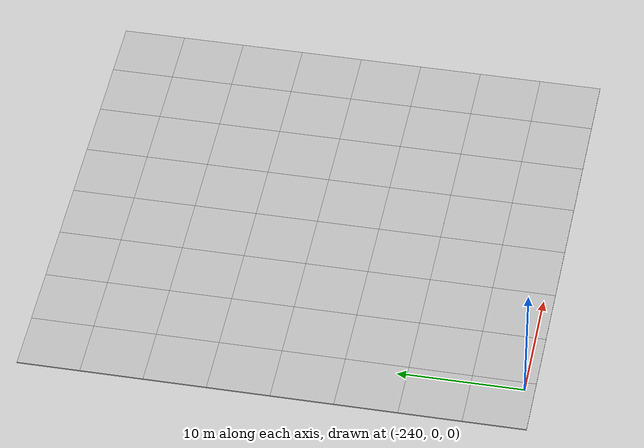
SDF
<sdf version="1.7">
 <world name="default">
  <model name="mud_plane_40x40_27">
   <model name="mud_plane_20x20">
    <model name="mud_plane">
     <static>1</static>
     <link name="link">
      <collision name="collision"><geometry><box><size>10 10 0.1</size></box></geometry></collision>
      <visual name="visual_1">
       <pose>-2.5 2.5 -0.05 0 -0 0</pose>
       <cast_shadows>0</cast_shadows>
       <geometry><box><size>5 5 0.1</size></box></geometry>
       <material>
        <script>
         <uri>model://mud_plane/materials/scripts</uri>
         <uri>model://mud_plane/materials/textures</uri>
         <name>vrc/mud</name>
        </script>
       </material>
      </visual>
      <visual name="visual_2">
       <pose>2.5 2.5 -0.05 0 -0 0</pose>
       <cast_shadows>0</cast_shadows>
       <geometry><box><size>5 5 0.1</size></box></geometry>
       <material>
        <script>
         <uri>model://mud_plane/materials/scripts</uri>
         <uri>model://mud_plane/materials/textures</uri>
         <name>vrc/mud</name>
        </script>
       </material>
      </visual>
      <visual name="visual_3">
       <pose>2.5 -2.5 -0.05 0 -0 0</pose>
       <cast_shadows>0</cast_shadows>
       <geometry><box><size>5 5 0.1</size></box></geometry>
       <material>
        <script>
         <uri>model://mud_plane/materials/scripts</uri>
         <uri>model://mud_plane/materials/textures</uri>
         <name>vrc/mud</name>
        </script>
       </material>
      </visual>
      <visual name="visual_4">
       <pose>-2.5 -2.5 -0.05 0 -0 0</pose>
       <cast_shadows>0</cast_shadows>
       <geometry><box><size>5 5 0.1</size></box></geometry>
       <material>
        <script>
         <uri>model://mud_plane/materials/scripts</uri>
         <uri>model://mud_plane/materials/textures</uri>
         <name>vrc/mud</name>
        </script>
       </material>
      </visual>
     </link>
     <pose>-4.99986 -4.99991 0 0 -0 0</pose>
    </model>
    <model name="mud_plane_0">
     <static>1</static>
     <link name="link">
      <collision name="collision"><geometry><box><size>10 10 0.1</size></box></geometry></collision>
      <visual name="visual_1">
       <pose>-2.5 2.5 -0.05 0 -0 0</pose>
       <cast_shadows>0</cast_shadows>
       <geometry><box><size>5 5 0.1</size></box></geometry>
       <material>
        <script>
         <uri>model://mud_plane/materials/scripts</uri>
         <uri>model://mud_plane/materials/textures</uri>
         <name>vrc/mud</name>
        </script>
       </material>
      </visual>
      <visual name="visual_2">
       <pose>2.5 2.5 -0.05 0 -0 0</pose>
       <cast_shadows>0</cast_shadows>
       <geometry><box><size>5 5 0.1</size></box></geometry>
       <material>
        <script>
         <uri>model://mud_plane/materials/scripts</uri>
         <uri>model://mud_plane/materials/textures</uri>
         <name>vrc/mud</name>
        </script>
       </material>
      </visual>
      <visual name="visual_3">
       <pose>2.5 -2.5 -0.05 0 -0 0</pose>
       <cast_shadows>0</cast_shadows>
       <geometry><box><size>5 5 0.1</size></box></geometry>
       <material>
        <script>
         <uri>model://mud_plane/materials/scripts</uri>
         <uri>model://mud_plane/materials/textures</uri>
         <name>vrc/mud</name>
        </script>
       </material>
      </visual>
      <visual name="visual_4">
       <pose>-2.5 -2.5 -0.05 0 -0 0</pose>
       <cast_shadows>0</cast_shadows>
       <geometry><box><size>5 5 0.1</size></box></geometry>
       <material>
        <script>
         <uri>model://mud_plane/materials/scripts</uri>
         <uri>model://mud_plane/materials/textures</uri>
         <name>vrc/mud</name>
        </script>
       </material>
      </visual>
     </link>
     <pose>-4.99946 4.99954 0 0 -0 0</pose>
    </model>
    <model name="mud_plane_1">
     <static>1</static>
     <link name="link">
      <collision name="collision"><geometry><box><size>10 10 0.1</size></box></geometry></collision>
      <visual name="visual_1">
       <pose>-2.5 2.5 -0.05 0 -0 0</pose>
       <cast_shadows>0</cast_shadows>
       <geometry><box><size>5 5 0.1</size></box></geometry>
       <material>
        <script>
         <uri>model://mud_plane/materials/scripts</uri>
         <uri>model://mud_plane/materials/textures</uri>
         <name>vrc/mud</name>
        </script>
       </material>
      </visual>
      <visual name="visual_2">
       <pose>2.5 2.5 -0.05 0 -0 0</pose>
       <cast_shadows>0</cast_shadows>
       <geometry><box><size>5 5 0.1</size></box></geometry>
       <material>
        <script>
         <uri>model://mud_plane/materials/scripts</uri>
         <uri>model://mud_plane/materials/textures</uri>
         <name>vrc/mud</name>
        </script>
       </material>
      </visual>
      <visual name="visual_3">
       <pose>2.5 -2.5 -0.05 0 -0 0</pose>
       <cast_shadows>0</cast_shadows>
       <geometry><box><size>5 5 0.1</size></box></geometry>
       <material>
        <script>
         <uri>model://mud_plane/materials/scripts</uri>
         <uri>model://mud_plane/materials/textures</uri>
         <name>vrc/mud</name>
        </script>
       </material>
      </visual>
      <visual name="visual_4">
       <pose>-2.5 -2.5 -0.05 0 -0 0</pose>
       <cast_shadows>0</cast_shadows>
       <geometry><box><size>5 5 0.1</size></box></geometry>
       <material>
        <script>
         <uri>model://mud_plane/materials/scripts</uri>
         <uri>model://mud_plane/materials/textures</uri>
         <name>vrc/mud</name>
        </script>
       </material>
      </visual>
     </link>
     <pose>4.99964 -4.99949 0 0 -0 0</pose>
    </model>
    <model name="mud_plane_2">
     <static>1</static>
     <link name="link">
      <collision name="collision"><geometry><box><size>10 10 0.1</size></box></geometry></collision>
      <visual name="visual_1">
       <pose>-2.5 2.5 -0.05 0 -0 0</pose>
       <cast_shadows>0</cast_shadows>
       <geometry><box><size>5 5 0.1</size></box></geometry>
       <material>
        <script>
         <uri>model://mud_plane/materials/scripts</uri>
         <uri>model://mud_plane/materials/textures</uri>
         <name>vrc/mud</name>
        </script>
       </material>
      </visual>
      <visual name="visual_2">
       <pose>2.5 2.5 -0.05 0 -0 0</pose>
       <cast_shadows>0</cast_shadows>
       <geometry><box><size>5 5 0.1</size></box></geometry>
       <material>
        <script>
         <uri>model://mud_plane/materials/scripts</uri>
         <uri>model://mud_plane/materials/textures</uri>
         <name>vrc/mud</name>
        </script>
       </material>
      </visual>
      <visual name="visual_3">
       <pose>2.5 -2.5 -0.05 0 -0 0</pose>
       <cast_shadows>0</cast_shadows>
       <geometry><box><size>5 5 0.1</size></box></geometry>
       <material>
        <script>
         <uri>model://mud_plane/materials/scripts</uri>
         <uri>model://mud_plane/materials/textures</uri>
         <name>vrc/mud</name>
        </script>
       </material>
      </visual>
      <visual name="visual_4">
       <pose>-2.5 -2.5 -0.05 0 -0 0</pose>
       <cast_shadows>0</cast_shadows>
       <geometry><box><size>5 5 0.1</size></box></geometry>
       <material>
        <script>
         <uri>model://mud_plane/materials/scripts</uri>
         <uri>model://mud_plane/materials/textures</uri>
         <name>vrc/mud</name>
        </script>
       </material>
      </visual>
     </link>
     <pose>4.99967 4.99986 0 0 -0 0</pose>
    </model>
    <static>0</static>
    <pose>-9.99895 9.99843 0 0 -0 0</pose>
   </model>
   <model name="mud_plane_20x20_0">
    <model name="mud_plane">
     <static>1</static>
     <link name="link">
      <collision name="collision"><geometry><box><size>10 10 0.1</size></box></geometry></collision>
      <visual name="visual_1">
       <pose>-2.5 2.5 -0.05 0 -0 0</pose>
       <cast_shadows>0</cast_shadows>
       <geometry><box><size>5 5 0.1</size></box></geometry>
       <material>
        <script>
         <uri>model://mud_plane/materials/scripts</uri>
         <uri>model://mud_plane/materials/textures</uri>
         <name>vrc/mud</name>
        </script>
       </material>
      </visual>
      <visual name="visual_2">
       <pose>2.5 2.5 -0.05 0 -0 0</pose>
       <cast_shadows>0</cast_shadows>
       <geometry><box><size>5 5 0.1</size></box></geometry>
       <material>
        <script>
         <uri>model://mud_plane/materials/scripts</uri>
         <uri>model://mud_plane/materials/textures</uri>
         <name>vrc/mud</name>
        </script>
       </material>
      </visual>
      <visual name="visual_3">
       <pose>2.5 -2.5 -0.05 0 -0 0</pose>
       <cast_shadows>0</cast_shadows>
       <geometry><box><size>5 5 0.1</size></box></geometry>
       <material>
        <script>
         <uri>model://mud_plane/materials/scripts</uri>
         <uri>model://mud_plane/materials/textures</uri>
         <name>vrc/mud</name>
        </script>
       </material>
      </visual>
      <visual name="visual_4">
       <pose>-2.5 -2.5 -0.05 0 -0 0</pose>
       <cast_shadows>0</cast_shadows>
       <geometry><box><size>5 5 0.1</size></box></geometry>
       <material>
        <script>
         <uri>model://mud_plane/materials/scripts</uri>
         <uri>model://mud_plane/materials/textures</uri>
         <name>vrc/mud</name>
        </script>
       </material>
      </visual>
     </link>
     <pose>-4.99986 -4.99991 0 0 -0 0</pose>
    </model>
    <model name="mud_plane_0">
     <static>1</static>
     <link name="link">
      <collision name="collision"><geometry><box><size>10 10 0.1</size></box></geometry></collision>
      <visual name="visual_1">
       <pose>-2.5 2.5 -0.05 0 -0 0</pose>
       <cast_shadows>0</cast_shadows>
       <geometry><box><size>5 5 0.1</size></box></geometry>
       <material>
        <script>
         <uri>model://mud_plane/materials/scripts</uri>
         <uri>model://mud_plane/materials/textures</uri>
         <name>vrc/mud</name>
        </script>
       </material>
      </visual>
      <visual name="visual_2">
       <pose>2.5 2.5 -0.05 0 -0 0</pose>
       <cast_shadows>0</cast_shadows>
       <geometry><box><size>5 5 0.1</size></box></geometry>
       <material>
        <script>
         <uri>model://mud_plane/materials/scripts</uri>
         <uri>model://mud_plane/materials/textures</uri>
         <name>vrc/mud</name>
        </script>
       </material>
      </visual>
      <visual name="visual_3">
       <pose>2.5 -2.5 -0.05 0 -0 0</pose>
       <cast_shadows>0</cast_shadows>
       <geometry><box><size>5 5 0.1</size></box></geometry>
       <material>
        <script>
         <uri>model://mud_plane/materials/scripts</uri>
         <uri>model://mud_plane/materials/textures</uri>
         <name>vrc/mud</name>
        </script>
       </material>
      </visual>
      <visual name="visual_4">
       <pose>-2.5 -2.5 -0.05 0 -0 0</pose>
       <cast_shadows>0</cast_shadows>
       <geometry><box><size>5 5 0.1</size></box></geometry>
       <material>
        <script>
         <uri>model://mud_plane/materials/scripts</uri>
         <uri>model://mud_plane/materials/textures</uri>
         <name>vrc/mud</name>
        </script>
       </material>
      </visual>
     </link>
     <pose>-4.99946 4.99954 0 0 -0 0</pose>
    </model>
    <model name="mud_plane_1">
     <static>1</static>
     <link name="link">
      <collision name="collision"><geometry><box><size>10 10 0.1</size></box></geometry></collision>
      <visual name="visual_1">
       <pose>-2.5 2.5 -0.05 0 -0 0</pose>
       <cast_shadows>0</cast_shadows>
       <geometry><box><size>5 5 0.1</size></box></geometry>
       <material>
        <script>
         <uri>model://mud_plane/materials/scripts</uri>
         <uri>model://mud_plane/materials/textures</uri>
         <name>vrc/mud</name>
        </script>
       </material>
      </visual>
      <visual name="visual_2">
       <pose>2.5 2.5 -0.05 0 -0 0</pose>
       <cast_shadows>0</cast_shadows>
       <geometry><box><size>5 5 0.1</size></box></geometry>
       <material>
        <script>
         <uri>model://mud_plane/materials/scripts</uri>
         <uri>model://mud_plane/materials/textures</uri>
         <name>vrc/mud</name>
        </script>
       </material>
      </visual>
      <visual name="visual_3">
       <pose>2.5 -2.5 -0.05 0 -0 0</pose>
       <cast_shadows>0</cast_shadows>
       <geometry><box><size>5 5 0.1</size></box></geometry>
       <material>
        <script>
         <uri>model://mud_plane/materials/scripts</uri>
         <uri>model://mud_plane/materials/textures</uri>
         <name>vrc/mud</name>
        </script>
       </material>
      </visual>
      <visual name="visual_4">
       <pose>-2.5 -2.5 -0.05 0 -0 0</pose>
       <cast_shadows>0</cast_shadows>
       <geometry><box><size>5 5 0.1</size></box></geometry>
       <material>
        <script>
         <uri>model://mud_plane/materials/scripts</uri>
         <uri>model://mud_plane/materials/textures</uri>
         <name>vrc/mud</name>
        </script>
       </material>
      </visual>
     </link>
     <pose>4.99964 -4.99949 0 0 -0 0</pose>
    </model>
    <model name="mud_plane_2">
     <static>1</static>
     <link name="link">
      <collision name="collision"><geometry><box><size>10 10 0.1</size></box></geometry></collision>
      <visual name="visual_1">
       <pose>-2.5 2.5 -0.05 0 -0 0</pose>
       <cast_shadows>0</cast_shadows>
       <geometry><box><size>5 5 0.1</size></box></geometry>
       <material>
        <script>
         <uri>model://mud_plane/materials/scripts</uri>
         <uri>model://mud_plane/materials/textures</uri>
         <name>vrc/mud</name>
        </script>
       </material>
      </visual>
      <visual name="visual_2">
       <pose>2.5 2.5 -0.05 0 -0 0</pose>
       <cast_shadows>0</cast_shadows>
       <geometry><box><size>5 5 0.1</size></box></geometry>
       <material>
        <script>
         <uri>model://mud_plane/materials/scripts</uri>
         <uri>model://mud_plane/materials/textures</uri>
         <name>vrc/mud</name>
        </script>
       </material>
      </visual>
      <visual name="visual_3">
       <pose>2.5 -2.5 -0.05 0 -0 0</pose>
       <cast_shadows>0</cast_shadows>
       <geometry><box><size>5 5 0.1</size></box></geometry>
       <material>
        <script>
         <uri>model://mud_plane/materials/scripts</uri>
         <uri>model://mud_plane/materials/textures</uri>
         <name>vrc/mud</name>
        </script>
       </material>
      </visual>
      <visual name="visual_4">
       <pose>-2.5 -2.5 -0.05 0 -0 0</pose>
       <cast_shadows>0</cast_shadows>
       <geometry><box><size>5 5 0.1</size></box></geometry>
       <material>
        <script>
         <uri>model://mud_plane/materials/scripts</uri>
         <uri>model://mud_plane/materials/textures</uri>
         <name>vrc/mud</name>
        </script>
       </material>
      </visual>
     </link>
     <pose>4.99967 4.99986 0 0 -0 0</pose>
    </model>
    <static>0</static>
    <pose>9.99933 9.9997 0 0 -0 0</pose>
   </model>
   <model name="mud_plane_20x20_1">
    <model name="mud_plane">
     <static>1</static>
     <link name="link">
      <collision name="collision"><geometry><box><size>10 10 0.1</size></box></geometry></collision>
      <visual name="visual_1">
       <pose>-2.5 2.5 -0.05 0 -0 0</pose>
       <cast_shadows>0</cast_shadows>
       <geometry><box><size>5 5 0.1</size></box></geometry>
       <material>
        <script>
         <uri>model://mud_plane/materials/scripts</uri>
         <uri>model://mud_plane/materials/textures</uri>
         <name>vrc/mud</name>
        </script>
       </material>
      </visual>
      <visual name="visual_2">
       <pose>2.5 2.5 -0.05 0 -0 0</pose>
       <cast_shadows>0</cast_shadows>
       <geometry><box><size>5 5 0.1</size></box></geometry>
       <material>
        <script>
         <uri>model://mud_plane/materials/scripts</uri>
         <uri>model://mud_plane/materials/textures</uri>
         <name>vrc/mud</name>
        </script>
       </material>
      </visual>
      <visual name="visual_3">
       <pose>2.5 -2.5 -0.05 0 -0 0</pose>
       <cast_shadows>0</cast_shadows>
       <geometry><box><size>5 5 0.1</size></box></geometry>
       <material>
        <script>
         <uri>model://mud_plane/materials/scripts</uri>
         <uri>model://mud_plane/materials/textures</uri>
         <name>vrc/mud</name>
        </script>
       </material>
      </visual>
      <visual name="visual_4">
       <pose>-2.5 -2.5 -0.05 0 -0 0</pose>
       <cast_shadows>0</cast_shadows>
       <geometry><box><size>5 5 0.1</size></box></geometry>
       <material>
        <script>
         <uri>model://mud_plane/materials/scripts</uri>
         <uri>model://mud_plane/materials/textures</uri>
         <name>vrc/mud</name>
        </script>
       </material>
      </visual>
     </link>
     <pose>-4.99986 -4.99991 0 0 -0 0</pose>
    </model>
    <model name="mud_plane_0">
     <static>1</static>
     <link name="link">
      <collision name="collision"><geometry><box><size>10 10 0.1</size></box></geometry></collision>
      <visual name="visual_1">
       <pose>-2.5 2.5 -0.05 0 -0 0</pose>
       <cast_shadows>0</cast_shadows>
       <geometry><box><size>5 5 0.1</size></box></geometry>
       <material>
        <script>
         <uri>model://mud_plane/materials/scripts</uri>
         <uri>model://mud_plane/materials/textures</uri>
         <name>vrc/mud</name>
        </script>
       </material>
      </visual>
      <visual name="visual_2">
       <pose>2.5 2.5 -0.05 0 -0 0</pose>
       <cast_shadows>0</cast_shadows>
       <geometry><box><size>5 5 0.1</size></box></geometry>
       <material>
        <script>
         <uri>model://mud_plane/materials/scripts</uri>
         <uri>model://mud_plane/materials/textures</uri>
         <name>vrc/mud</name>
        </script>
       </material>
      </visual>
      <visual name="visual_3">
       <pose>2.5 -2.5 -0.05 0 -0 0</pose>
       <cast_shadows>0</cast_shadows>
       <geometry><box><size>5 5 0.1</size></box></geometry>
       <material>
        <script>
         <uri>model://mud_plane/materials/scripts</uri>
         <uri>model://mud_plane/materials/textures</uri>
         <name>vrc/mud</name>
        </script>
       </material>
      </visual>
      <visual name="visual_4">
       <pose>-2.5 -2.5 -0.05 0 -0 0</pose>
       <cast_shadows>0</cast_shadows>
       <geometry><box><size>5 5 0.1</size></box></geometry>
       <material>
        <script>
         <uri>model://mud_plane/materials/scripts</uri>
         <uri>model://mud_plane/materials/textures</uri>
         <name>vrc/mud</name>
        </script>
       </material>
      </visual>
     </link>
     <pose>-4.99946 4.99954 0 0 -0 0</pose>
    </model>
    <model name="mud_plane_1">
     <static>1</static>
     <link name="link">
      <collision name="collision"><geometry><box><size>10 10 0.1</size></box></geometry></collision>
      <visual name="visual_1">
       <pose>-2.5 2.5 -0.05 0 -0 0</pose>
       <cast_shadows>0</cast_shadows>
       <geometry><box><size>5 5 0.1</size></box></geometry>
       <material>
        <script>
         <uri>model://mud_plane/materials/scripts</uri>
         <uri>model://mud_plane/materials/textures</uri>
         <name>vrc/mud</name>
        </script>
       </material>
      </visual>
      <visual name="visual_2">
       <pose>2.5 2.5 -0.05 0 -0 0</pose>
       <cast_shadows>0</cast_shadows>
       <geometry><box><size>5 5 0.1</size></box></geometry>
       <material>
        <script>
         <uri>model://mud_plane/materials/scripts</uri>
         <uri>model://mud_plane/materials/textures</uri>
         <name>vrc/mud</name>
        </script>
       </material>
      </visual>
      <visual name="visual_3">
       <pose>2.5 -2.5 -0.05 0 -0 0</pose>
       <cast_shadows>0</cast_shadows>
       <geometry><box><size>5 5 0.1</size></box></geometry>
       <material>
        <script>
         <uri>model://mud_plane/materials/scripts</uri>
         <uri>model://mud_plane/materials/textures</uri>
         <name>vrc/mud</name>
        </script>
       </material>
      </visual>
      <visual name="visual_4">
       <pose>-2.5 -2.5 -0.05 0 -0 0</pose>
       <cast_shadows>0</cast_shadows>
       <geometry><box><size>5 5 0.1</size></box></geometry>
       <material>
        <script>
         <uri>model://mud_plane/materials/scripts</uri>
         <uri>model://mud_plane/materials/textures</uri>
         <name>vrc/mud</name>
        </script>
       </material>
      </visual>
     </link>
     <pose>4.99964 -4.99949 0 0 -0 0</pose>
    </model>
    <model name="mud_plane_2">
     <static>1</static>
     <link name="link">
      <collision name="collision"><geometry><box><size>10 10 0.1</size></box></geometry></collision>
      <visual name="visual_1">
       <pose>-2.5 2.5 -0.05 0 -0 0</pose>
       <cast_shadows>0</cast_shadows>
       <geometry><box><size>5 5 0.1</size></box></geometry>
       <material>
        <script>
         <uri>model://mud_plane/materials/scripts</uri>
         <uri>model://mud_plane/materials/textures</uri>
         <name>vrc/mud</name>
        </script>
       </material>
      </visual>
      <visual name="visual_2">
       <pose>2.5 2.5 -0.05 0 -0 0</pose>
       <cast_shadows>0</cast_shadows>
       <geometry><box><size>5 5 0.1</size></box></geometry>
       <material>
        <script>
         <uri>model://mud_plane/materials/scripts</uri>
         <uri>model://mud_plane/materials/textures</uri>
         <name>vrc/mud</name>
        </script>
       </material>
      </visual>
      <visual name="visual_3">
       <pose>2.5 -2.5 -0.05 0 -0 0</pose>
       <cast_shadows>0</cast_shadows>
       <geometry><box><size>5 5 0.1</size></box></geometry>
       <material>
        <script>
         <uri>model://mud_plane/materials/scripts</uri>
         <uri>model://mud_plane/materials/textures</uri>
         <name>vrc/mud</name>
        </script>
       </material>
      </visual>
      <visual name="visual_4">
       <pose>-2.5 -2.5 -0.05 0 -0 0</pose>
       <cast_shadows>0</cast_shadows>
       <geometry><box><size>5 5 0.1</size></box></geometry>
       <material>
        <script>
         <uri>model://mud_plane/materials/scripts</uri>
         <uri>model://mud_plane/materials/textures</uri>
         <name>vrc/mud</name>
        </script>
       </material>
      </visual>
     </link>
     <pose>4.99967 4.99986 0 0 -0 0</pose>
    </model>
    <static>0</static>
    <pose>9.9993 -9.99877 0 0 -0 0</pose>
   </model>
   <model name="mud_plane_20x20_2">
    <model name="mud_plane">
     <static>1</static>
     <link name="link">
      <collision name="collision"><geometry><box><size>10 10 0.1</size></box></geometry></collision>
      <visual name="visual_1">
       <pose>-2.5 2.5 -0.05 0 -0 0</pose>
       <cast_shadows>0</cast_shadows>
       <geometry><box><size>5 5 0.1</size></box></geometry>
       <material>
        <script>
         <uri>model://mud_plane/materials/scripts</uri>
         <uri>model://mud_plane/materials/textures</uri>
         <name>vrc/mud</name>
        </script>
       </material>
      </visual>
      <visual name="visual_2">
       <pose>2.5 2.5 -0.05 0 -0 0</pose>
       <cast_shadows>0</cast_shadows>
       <geometry><box><size>5 5 0.1</size></box></geometry>
       <material>
        <script>
         <uri>model://mud_plane/materials/scripts</uri>
         <uri>model://mud_plane/materials/textures</uri>
         <name>vrc/mud</name>
        </script>
       </material>
      </visual>
      <visual name="visual_3">
       <pose>2.5 -2.5 -0.05 0 -0 0</pose>
       <cast_shadows>0</cast_shadows>
       <geometry><box><size>5 5 0.1</size></box></geometry>
       <material>
        <script>
         <uri>model://mud_plane/materials/scripts</uri>
         <uri>model://mud_plane/materials/textures</uri>
         <name>vrc/mud</name>
        </script>
       </material>
      </visual>
      <visual name="visual_4">
       <pose>-2.5 -2.5 -0.05 0 -0 0</pose>
       <cast_shadows>0</cast_shadows>
       <geometry><box><size>5 5 0.1</size></box></geometry>
       <material>
        <script>
         <uri>model://mud_plane/materials/scripts</uri>
         <uri>model://mud_plane/materials/textures</uri>
         <name>vrc/mud</name>
        </script>
       </material>
      </visual>
     </link>
     <pose>-4.99986 -4.99991 0 0 -0 0</pose>
    </model>
    <model name="mud_plane_0">
     <static>1</static>
     <link name="link">
      <collision name="collision"><geometry><box><size>10 10 0.1</size></box></geometry></collision>
      <visual name="visual_1">
       <pose>-2.5 2.5 -0.05 0 -0 0</pose>
       <cast_shadows>0</cast_shadows>
       <geometry><box><size>5 5 0.1</size></box></geometry>
       <material>
        <script>
         <uri>model://mud_plane/materials/scripts</uri>
         <uri>model://mud_plane/materials/textures</uri>
         <name>vrc/mud</name>
        </script>
       </material>
      </visual>
      <visual name="visual_2">
       <pose>2.5 2.5 -0.05 0 -0 0</pose>
       <cast_shadows>0</cast_shadows>
       <geometry><box><size>5 5 0.1</size></box></geometry>
       <material>
        <script>
         <uri>model://mud_plane/materials/scripts</uri>
         <uri>model://mud_plane/materials/textures</uri>
         <name>vrc/mud</name>
        </script>
       </material>
      </visual>
      <visual name="visual_3">
       <pose>2.5 -2.5 -0.05 0 -0 0</pose>
       <cast_shadows>0</cast_shadows>
       <geometry><box><size>5 5 0.1</size></box></geometry>
       <material>
        <script>
         <uri>model://mud_plane/materials/scripts</uri>
         <uri>model://mud_plane/materials/textures</uri>
         <name>vrc/mud</name>
        </script>
       </material>
      </visual>
      <visual name="visual_4">
       <pose>-2.5 -2.5 -0.05 0 -0 0</pose>
       <cast_shadows>0</cast_shadows>
       <geometry><box><size>5 5 0.1</size></box></geometry>
       <material>
        <script>
         <uri>model://mud_plane/materials/scripts</uri>
         <uri>model://mud_plane/materials/textures</uri>
         <name>vrc/mud</name>
        </script>
       </material>
      </visual>
     </link>
     <pose>-4.99946 4.99954 0 0 -0 0</pose>
    </model>
    <model name="mud_plane_1">
     <static>1</static>
     <link name="link">
      <collision name="collision"><geometry><box><size>10 10 0.1</size></box></geometry></collision>
      <visual name="visual_1">
       <pose>-2.5 2.5 -0.05 0 -0 0</pose>
       <cast_shadows>0</cast_shadows>
       <geometry><box><size>5 5 0.1</size></box></geometry>
       <material>
        <script>
         <uri>model://mud_plane/materials/scripts</uri>
         <uri>model://mud_plane/materials/textures</uri>
         <name>vrc/mud</name>
        </script>
       </material>
      </visual>
      <visual name="visual_2">
       <pose>2.5 2.5 -0.05 0 -0 0</pose>
       <cast_shadows>0</cast_shadows>
       <geometry><box><size>5 5 0.1</size></box></geometry>
       <material>
        <script>
         <uri>model://mud_plane/materials/scripts</uri>
         <uri>model://mud_plane/materials/textures</uri>
         <name>vrc/mud</name>
        </script>
       </material>
      </visual>
      <visual name="visual_3">
       <pose>2.5 -2.5 -0.05 0 -0 0</pose>
       <cast_shadows>0</cast_shadows>
       <geometry><box><size>5 5 0.1</size></box></geometry>
       <material>
        <script>
         <uri>model://mud_plane/materials/scripts</uri>
         <uri>model://mud_plane/materials/textures</uri>
         <name>vrc/mud</name>
        </script>
       </material>
      </visual>
      <visual name="visual_4">
       <pose>-2.5 -2.5 -0.05 0 -0 0</pose>
       <cast_shadows>0</cast_shadows>
       <geometry><box><size>5 5 0.1</size></box></geometry>
       <material>
        <script>
         <uri>model://mud_plane/materials/scripts</uri>
         <uri>model://mud_plane/materials/textures</uri>
         <name>vrc/mud</name>
        </script>
       </material>
      </visual>
     </link>
     <pose>4.99964 -4.99949 0 0 -0 0</pose>
    </model>
    <model name="mud_plane_2">
     <static>1</static>
     <link name="link">
      <collision name="collision"><geometry><box><size>10 10 0.1</size></box></geometry></collision>
      <visual name="visual_1">
       <pose>-2.5 2.5 -0.05 0 -0 0</pose>
       <cast_shadows>0</cast_shadows>
       <geometry><box><size>5 5 0.1</size></box></geometry>
       <material>
        <script>
         <uri>model://mud_plane/materials/scripts</uri>
         <uri>model://mud_plane/materials/textures</uri>
         <name>vrc/mud</name>
        </script>
       </material>
      </visual>
      <visual name="visual_2">
       <pose>2.5 2.5 -0.05 0 -0 0</pose>
       <cast_shadows>0</cast_shadows>
       <geometry><box><size>5 5 0.1</size></box></geometry>
       <material>
        <script>
         <uri>model://mud_plane/materials/scripts</uri>
         <uri>model://mud_plane/materials/textures</uri>
         <name>vrc/mud</name>
        </script>
       </material>
      </visual>
      <visual name="visual_3">
       <pose>2.5 -2.5 -0.05 0 -0 0</pose>
       <cast_shadows>0</cast_shadows>
       <geometry><box><size>5 5 0.1</size></box></geometry>
       <material>
        <script>
         <uri>model://mud_plane/materials/scripts</uri>
         <uri>model://mud_plane/materials/textures</uri>
         <name>vrc/mud</name>
        </script>
       </material>
      </visual>
      <visual name="visual_4">
       <pose>-2.5 -2.5 -0.05 0 -0 0</pose>
       <cast_shadows>0</cast_shadows>
       <geometry><box><size>5 5 0.1</size></box></geometry>
       <material>
        <script>
         <uri>model://mud_plane/materials/scripts</uri>
         <uri>model://mud_plane/materials/textures</uri>
         <name>vrc/mud</name>
        </script>
       </material>
      </visual>
     </link>
     <pose>4.99967 4.99986 0 0 -0 0</pose>
    </model>
    <static>0</static>
    <pose>-9.99969 -9.99935 0 0 -0 0</pose>
   </model>
   <static>0</static>
   <pose>-224.133 19.2194 0 0 -0 0</pose>
  </model>
 </world>
</sdf>
